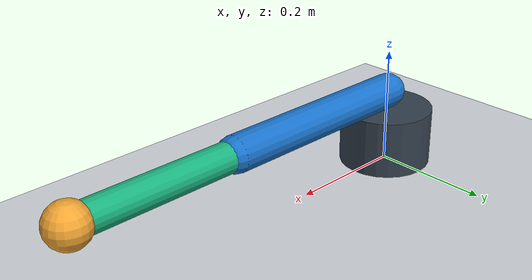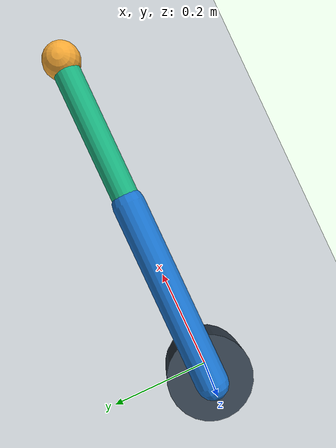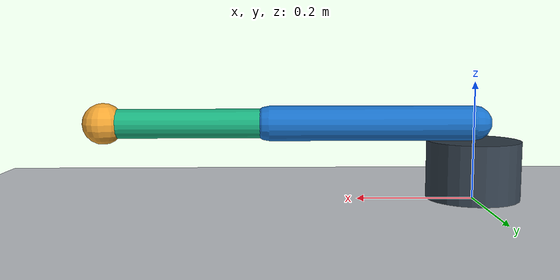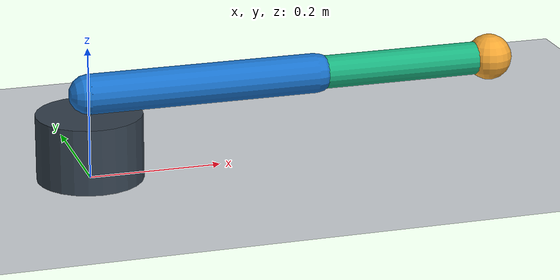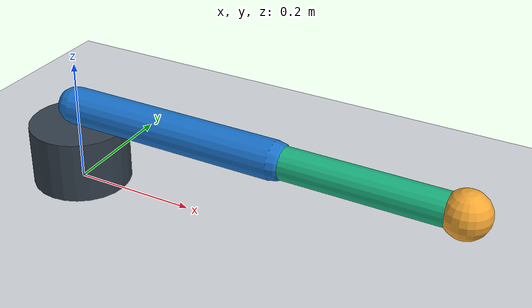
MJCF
<mujoco model="winros_two_link_arm">
  <compiler angle="degree" coordinate="local"/>
  <option timestep="0.002" gravity="0 0 -9.81"/>

  <default>
    <joint damping="0.2" armature="0.01"/>
    <geom density="500" friction="0.8 0.1 0.1"/>
  </default>

  <worldbody>
    <light name="key" pos="0 -3 3" dir="0 1 -1"/>
    <geom name="floor" type="plane" size="2 2 0.05" rgba="0.82 0.84 0.86 1"/>

    <body name="base" pos="0 0 0.05">
      <geom name="base_geom" type="cylinder" size="0.08 0.05" rgba="0.2 0.25 0.3 1"/>

      <body name="link1" pos="0 0 0.08">
        <joint name="shoulder" type="hinge" axis="0 0 1" limited="true" range="-120 120"/>
        <geom name="link1_geom" type="capsule" fromto="0 0 0 0.35 0 0" size="0.03" rgba="0.1 0.45 0.8 1"/>

        <body name="link2" pos="0.35 0 0">
          <joint name="elbow" type="hinge" axis="0 0 1" limited="true" range="-135 135"/>
          <geom name="link2_geom" type="capsule" fromto="0 0 0 0.28 0 0" size="0.025" rgba="0.1 0.7 0.5 1"/>
          <body name="tool" pos="0.28 0 0">
            <geom name="tool_geom" type="sphere" size="0.035" rgba="0.95 0.65 0.2 1"/>
          </body>
        </body>
      </body>
    </body>
  </worldbody>

  <actuator>
    <motor name="shoulder_motor" joint="shoulder" gear="40" ctrlrange="-1 1"/>
    <motor name="elbow_motor" joint="elbow" gear="30" ctrlrange="-1 1"/>
  </actuator>
</mujoco>
